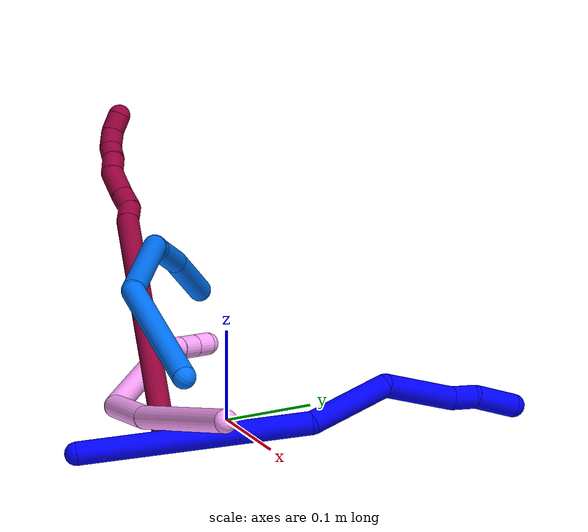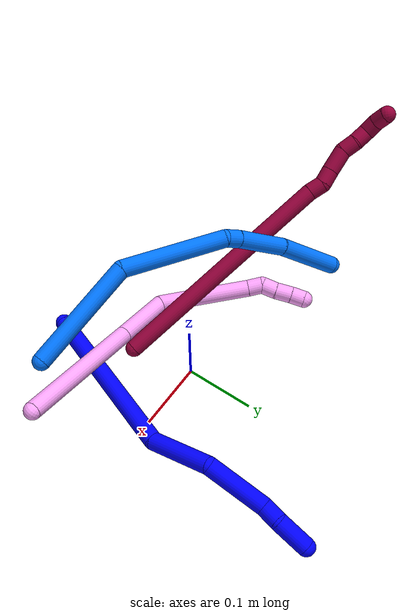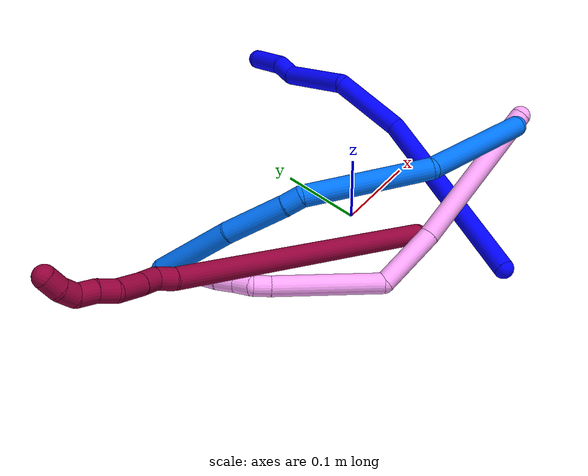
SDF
<sdf version="1.7">
 <world name="default">
  <model name="1">
   <static>0</static>
   <link name="1">
    <collision name="collision-cylinder-e_1_1_4">
     <pose>0.021854 0.020669 0.119803 -0.170846 0.177858 -0.01527</pose>
     <geometry><cylinder><radius>0.0125</radius><length>0.247042</length></cylinder></geometry>
     <surface>
      <friction><ode><mu>1.16</mu><mu2>1.16</mu2><slip1>0</slip1><slip2>0</slip2></ode></friction>
      <contact><ode><kp>1e+06</kp><kd>1</kd><max_vel>0</max_vel><min_depth>0.001</min_depth></ode></contact>
     </surface>
    </collision>
    <visual name="visual-cylinder-e_1_1_4">
     <pose>0.021854 0.020669 0.119803 -0.170846 0.177858 -0.01527</pose>
     <geometry><cylinder><radius>0.0125</radius><length>0.247042</length></cylinder></geometry>
     <material><ambient>0 0 1 1</ambient></material>
    </visual>
    <collision name="collision-cylinder-e_2_4_5">
     <pose>0.032069 0.047514 0.283124 -0.140966 -0.258835 0.018376</pose>
     <geometry><cylinder><radius>0.0125</radius><length>0.09094</length></cylinder></geometry>
     <surface>
      <friction><ode><mu>1.16</mu><mu2>1.16</mu2><slip1>0</slip1><slip2>0</slip2></ode></friction>
      <contact><ode><kp>1e+06</kp><kd>1</kd><max_vel>0</max_vel><min_depth>0.001</min_depth></ode></contact>
     </surface>
    </collision>
    <visual name="visual-cylinder-e_2_4_5">
     <pose>0.032069 0.047514 0.283124 -0.140966 -0.258835 0.018376</pose>
     <geometry><cylinder><radius>0.0125</radius><length>0.09094</length></cylinder></geometry>
     <material><ambient>0 0 1 1</ambient></material>
    </visual>
    <collision name="collision-cylinder-e_3_5_6">
     <pose>0.018864 0.083456 0.359042 -0.743075 -0.035604 0.013874</pose>
     <geometry><cylinder><radius>0.0125</radius><length>0.088049</length></cylinder></geometry>
     <surface>
      <friction><ode><mu>1.16</mu><mu2>1.16</mu2><slip1>0</slip1><slip2>0</slip2></ode></friction>
      <contact><ode><kp>1e+06</kp><kd>1</kd><max_vel>0</max_vel><min_depth>0.001</min_depth></ode></contact>
     </surface>
    </collision>
    <visual name="visual-cylinder-e_3_5_6">
     <pose>0.018864 0.083456 0.359042 -0.743075 -0.035604 0.013874</pose>
     <geometry><cylinder><radius>0.0125</radius><length>0.088049</length></cylinder></geometry>
     <material><ambient>0 0 1 1</ambient></material>
    </visual>
    <collision name="collision-cylinder-e_4_6_7">
     <pose>0.018651 0.117496 0.403866 -0.331293 0.102739 -0.01719</pose>
     <geometry><cylinder><radius>0.0125</radius><length>0.026418</length></cylinder></geometry>
     <surface>
      <friction><ode><mu>1.16</mu><mu2>1.16</mu2><slip1>0</slip1><slip2>0</slip2></ode></friction>
      <contact><ode><kp>1e+06</kp><kd>1</kd><max_vel>0</max_vel><min_depth>0.001</min_depth></ode></contact>
     </surface>
    </collision>
    <visual name="visual-cylinder-e_4_6_7">
     <pose>0.018651 0.117496 0.403866 -0.331293 0.102739 -0.01719</pose>
     <geometry><cylinder><radius>0.0125</radius><length>0.026418</length></cylinder></geometry>
     <material><ambient>0 0 1 1</ambient></material>
    </visual>
    <collision name="collision-cylinder-e_5_7_2">
     <pose>0.021661 0.137225 0.434282 -0.709722 0.069668 -0.025824</pose>
     <geometry><cylinder><radius>0.0125</radius><length>0.047552</length></cylinder></geometry>
     <surface>
      <friction><ode><mu>1.16</mu><mu2>1.16</mu2><slip1>0</slip1><slip2>0</slip2></ode></friction>
      <contact><ode><kp>1e+06</kp><kd>1</kd><max_vel>0</max_vel><min_depth>0.001</min_depth></ode></contact>
     </surface>
    </collision>
    <visual name="visual-cylinder-e_5_7_2">
     <pose>0.021661 0.137225 0.434282 -0.709722 0.069668 -0.025824</pose>
     <geometry><cylinder><radius>0.0125</radius><length>0.047552</length></cylinder></geometry>
     <material><ambient>0 0 1 1</ambient></material>
    </visual>
    <collision name="collision-sphere-2">
     <pose>0.023316 0.15268 0.452273 0 -0 0</pose>
     <geometry><sphere><radius>0.0125</radius></sphere></geometry>
     <surface>
      <friction><ode><mu>1.16</mu><mu2>1.16</mu2><slip1>0</slip1><slip2>0</slip2></ode></friction>
      <contact><ode><kp>1e+06</kp><kd>1</kd><max_vel>0</max_vel><min_depth>0.001</min_depth></ode></contact>
     </surface>
    </collision>
    <visual name="visual-sphere-2">
     <pose>0.023316 0.15268 0.452273 0 -0 0</pose>
     <geometry><sphere><radius>0.0125</radius></sphere></geometry>
     <material><ambient>0 0 1 1</ambient></material>
    </visual>
    <collision name="collision-sphere-7">
     <pose>0.020006 0.12177 0.41629 0 -0 0</pose>
     <geometry><sphere><radius>0.0125</radius></sphere></geometry>
     <surface>
      <friction><ode><mu>1.16</mu><mu2>1.16</mu2><slip1>0</slip1><slip2>0</slip2></ode></friction>
      <contact><ode><kp>1e+06</kp><kd>1</kd><max_vel>0</max_vel><min_depth>0.001</min_depth></ode></contact>
     </surface>
    </collision>
    <visual name="visual-sphere-7">
     <pose>0.020006 0.12177 0.41629 0 -0 0</pose>
     <geometry><sphere><radius>0.0125</radius></sphere></geometry>
     <material><ambient>0 0 1 1</ambient></material>
    </visual>
    <collision name="collision-sphere-6">
     <pose>0.017296 0.113222 0.391441 0 -0 0</pose>
     <geometry><sphere><radius>0.0125</radius></sphere></geometry>
     <surface>
      <friction><ode><mu>1.16</mu><mu2>1.16</mu2><slip1>0</slip1><slip2>0</slip2></ode></friction>
      <contact><ode><kp>1e+06</kp><kd>1</kd><max_vel>0</max_vel><min_depth>0.001</min_depth></ode></contact>
     </surface>
    </collision>
    <visual name="visual-sphere-6">
     <pose>0.017296 0.113222 0.391441 0 -0 0</pose>
     <geometry><sphere><radius>0.0125</radius></sphere></geometry>
     <material><ambient>0 0 1 1</ambient></material>
    </visual>
    <collision name="collision-sphere-5">
     <pose>0.020431 0.05369 0.326644 0 -0 0</pose>
     <geometry><sphere><radius>0.0125</radius></sphere></geometry>
     <surface>
      <friction><ode><mu>1.16</mu><mu2>1.16</mu2><slip1>0</slip1><slip2>0</slip2></ode></friction>
      <contact><ode><kp>1e+06</kp><kd>1</kd><max_vel>0</max_vel><min_depth>0.001</min_depth></ode></contact>
     </surface>
    </collision>
    <visual name="visual-sphere-5">
     <pose>0.020431 0.05369 0.326644 0 -0 0</pose>
     <geometry><sphere><radius>0.0125</radius></sphere></geometry>
     <material><ambient>0 0 1 1</ambient></material>
    </visual>
    <collision name="collision-sphere-1">
     <geometry><sphere><radius>0.0125</radius></sphere></geometry>
     <surface>
      <friction><ode><mu>1.16</mu><mu2>1.16</mu2><slip1>0</slip1><slip2>0</slip2></ode></friction>
      <contact><ode><kp>1e+06</kp><kd>1</kd><max_vel>0</max_vel><min_depth>0.001</min_depth></ode></contact>
     </surface>
    </collision>
    <visual name="visual-sphere-1">
     <geometry><sphere><radius>0.0125</radius></sphere></geometry>
     <material><ambient>0 0 1 1</ambient></material>
    </visual>
    <collision name="collision-sphere-4">
     <pose>0.043707 0.041339 0.239605 0 -0 0</pose>
     <geometry><sphere><radius>0.0125</radius></sphere></geometry>
     <surface>
      <friction><ode><mu>1.16</mu><mu2>1.16</mu2><slip1>0</slip1><slip2>0</slip2></ode></friction>
      <contact><ode><kp>1e+06</kp><kd>1</kd><max_vel>0</max_vel><min_depth>0.001</min_depth></ode></contact>
     </surface>
    </collision>
    <visual name="visual-sphere-4">
     <pose>0.043707 0.041339 0.239605 0 -0 0</pose>
     <geometry><sphere><radius>0.0125</radius></sphere></geometry>
     <material><ambient>0 0 1 1</ambient></material>
    </visual>
    <inertial>
     <pose>0.022997 0.052809 0.236554 0 -0 0</pose>
     <mass>0.5</mass>
     <inertia>
      <ixx>0.001368</ixx>
      <ixy>0</ixy>
      <ixz>0</ixz>
      <iyy>0.001363</iyy>
      <iyz>0</iyz>
      <izz>-0.00044</izz>
     </inertia>
    </inertial>
   </link>
   <pose>0.04405 -0.19658 0.011487 -1.22072 0.386022 -0.131909</pose>
  </model>
  <model name="4">
   <static>0</static>
   <link name="4">
    <collision name="collision-cylinder-e_1_1_4">
     <pose>-0.082066 0.012032 0.05208 -0.227043 -0.993485 0.12345</pose>
     <geometry><cylinder><radius>0.0125</radius><length>0.195876</length></cylinder></geometry>
     <surface>
      <friction><ode><mu>1.16</mu><mu2>1.16</mu2><slip1>0</slip1><slip2>0</slip2></ode></friction>
      <contact><ode><kp>1e+06</kp><kd>1</kd><max_vel>0</max_vel><min_depth>0.001</min_depth></ode></contact>
     </surface>
    </collision>
    <visual name="visual-cylinder-e_1_1_4">
     <pose>-0.082066 0.012032 0.05208 -0.227043 -0.993485 0.12345</pose>
     <geometry><cylinder><radius>0.0125</radius><length>0.195876</length></cylinder></geometry>
     <material><ambient>1 0.65098 0.996078 1</ambient></material>
    </visual>
    <collision name="collision-cylinder-e_2_4_5">
     <pose>-0.195514 0.029361 0.130594 -0.197766 -0.861075 0.091063</pose>
     <geometry><cylinder><radius>0.0125</radius><length>0.082746</length></cylinder></geometry>
     <surface>
      <friction><ode><mu>1.16</mu><mu2>1.16</mu2><slip1>0</slip1><slip2>0</slip2></ode></friction>
      <contact><ode><kp>1e+06</kp><kd>1</kd><max_vel>0</max_vel><min_depth>0.001</min_depth></ode></contact>
     </surface>
    </collision>
    <visual name="visual-cylinder-e_2_4_5">
     <pose>-0.195514 0.029361 0.130594 -0.197766 -0.861075 0.091063</pose>
     <geometry><cylinder><radius>0.0125</radius><length>0.082746</length></cylinder></geometry>
     <material><ambient>1 0.65098 0.996078 1</ambient></material>
    </visual>
    <collision name="collision-cylinder-e_3_5_6">
     <pose>-0.239703 0.075842 0.207891 -0.680639 -0.193223 0.068606</pose>
     <geometry><cylinder><radius>0.0125</radius><length>0.133374</length></cylinder></geometry>
     <surface>
      <friction><ode><mu>1.16</mu><mu2>1.16</mu2><slip1>0</slip1><slip2>0</slip2></ode></friction>
      <contact><ode><kp>1e+06</kp><kd>1</kd><max_vel>0</max_vel><min_depth>0.001</min_depth></ode></contact>
     </surface>
    </collision>
    <visual name="visual-cylinder-e_3_5_6">
     <pose>-0.239703 0.075842 0.207891 -0.680639 -0.193223 0.068606</pose>
     <geometry><cylinder><radius>0.0125</radius><length>0.133374</length></cylinder></geometry>
     <material><ambient>1 0.65098 0.996078 1</ambient></material>
    </visual>
    <collision name="collision-cylinder-e_4_6_7">
     <pose>-0.253895 0.123168 0.267488 -0.612816 -0.129166 0.040916</pose>
     <geometry><cylinder><radius>0.0125</radius><length>0.021534</length></cylinder></geometry>
     <surface>
      <friction><ode><mu>1.16</mu><mu2>1.16</mu2><slip1>0</slip1><slip2>0</slip2></ode></friction>
      <contact><ode><kp>1e+06</kp><kd>1</kd><max_vel>0</max_vel><min_depth>0.001</min_depth></ode></contact>
     </surface>
    </collision>
    <visual name="visual-cylinder-e_4_6_7">
     <pose>-0.253895 0.123168 0.267488 -0.612816 -0.129166 0.040916</pose>
     <geometry><cylinder><radius>0.0125</radius><length>0.021534</length></cylinder></geometry>
     <material><ambient>1 0.65098 0.996078 1</ambient></material>
    </visual>
    <collision name="collision-cylinder-e_5_7_8">
     <pose>-0.255597 0.139582 0.279854 -1.23103 -0.028908 0.020443</pose>
     <geometry><cylinder><radius>0.0125</radius><length>0.0218</length></cylinder></geometry>
     <surface>
      <friction><ode><mu>1.16</mu><mu2>1.16</mu2><slip1>0</slip1><slip2>0</slip2></ode></friction>
      <contact><ode><kp>1e+06</kp><kd>1</kd><max_vel>0</max_vel><min_depth>0.001</min_depth></ode></contact>
     </surface>
    </collision>
    <visual name="visual-cylinder-e_5_7_8">
     <pose>-0.255597 0.139582 0.279854 -1.23103 -0.028908 0.020443</pose>
     <geometry><cylinder><radius>0.0125</radius><length>0.0218</length></cylinder></geometry>
     <material><ambient>1 0.65098 0.996078 1</ambient></material>
    </visual>
    <collision name="collision-cylinder-e_6_8_9">
     <pose>-0.256745 0.160665 0.28885 -1.11014 -0.068894 0.042732</pose>
     <geometry><cylinder><radius>0.0125</radius><length>0.024193</length></cylinder></geometry>
     <surface>
      <friction><ode><mu>1.16</mu><mu2>1.16</mu2><slip1>0</slip1><slip2>0</slip2></ode></friction>
      <contact><ode><kp>1e+06</kp><kd>1</kd><max_vel>0</max_vel><min_depth>0.001</min_depth></ode></contact>
     </surface>
    </collision>
    <visual name="visual-cylinder-e_6_8_9">
     <pose>-0.256745 0.160665 0.28885 -1.11014 -0.068894 0.042732</pose>
     <geometry><cylinder><radius>0.0125</radius><length>0.024193</length></cylinder></geometry>
     <material><ambient>1 0.65098 0.996078 1</ambient></material>
    </visual>
    <collision name="collision-cylinder-e_7_9_2">
     <pose>-0.257201 0.180816 0.298389 -1.15054 0.036776 -0.023848</pose>
     <geometry><cylinder><radius>0.0125</radius><length>0.020477</length></cylinder></geometry>
     <surface>
      <friction><ode><mu>1.16</mu><mu2>1.16</mu2><slip1>0</slip1><slip2>0</slip2></ode></friction>
      <contact><ode><kp>1e+06</kp><kd>1</kd><max_vel>0</max_vel><min_depth>0.001</min_depth></ode></contact>
     </surface>
    </collision>
    <visual name="visual-cylinder-e_7_9_2">
     <pose>-0.257201 0.180816 0.298389 -1.15054 0.036776 -0.023848</pose>
     <geometry><cylinder><radius>0.0125</radius><length>0.020477</length></cylinder></geometry>
     <material><ambient>1 0.65098 0.996078 1</ambient></material>
    </visual>
    <collision name="collision-sphere-2">
     <pose>-0.256825 0.190157 0.302563 0 -0 0</pose>
     <geometry><sphere><radius>0.0125</radius></sphere></geometry>
     <surface>
      <friction><ode><mu>1.16</mu><mu2>1.16</mu2><slip1>0</slip1><slip2>0</slip2></ode></friction>
      <contact><ode><kp>1e+06</kp><kd>1</kd><max_vel>0</max_vel><min_depth>0.001</min_depth></ode></contact>
     </surface>
    </collision>
    <visual name="visual-sphere-2">
     <pose>-0.256825 0.190157 0.302563 0 -0 0</pose>
     <geometry><sphere><radius>0.0125</radius></sphere></geometry>
     <material><ambient>1 0.65098 0.996078 1</ambient></material>
    </visual>
    <collision name="collision-sphere-9">
     <pose>-0.257578 0.171474 0.294214 0 -0 0</pose>
     <geometry><sphere><radius>0.0125</radius></sphere></geometry>
     <surface>
      <friction><ode><mu>1.16</mu><mu2>1.16</mu2><slip1>0</slip1><slip2>0</slip2></ode></friction>
      <contact><ode><kp>1e+06</kp><kd>1</kd><max_vel>0</max_vel><min_depth>0.001</min_depth></ode></contact>
     </surface>
    </collision>
    <visual name="visual-sphere-9">
     <pose>-0.257578 0.171474 0.294214 0 -0 0</pose>
     <geometry><sphere><radius>0.0125</radius></sphere></geometry>
     <material><ambient>1 0.65098 0.996078 1</ambient></material>
    </visual>
    <collision name="collision-sphere-4">
     <pose>-0.164131 0.024064 0.10416 0 -0 0</pose>
     <geometry><sphere><radius>0.0125</radius></sphere></geometry>
     <surface>
      <friction><ode><mu>1.16</mu><mu2>1.16</mu2><slip1>0</slip1><slip2>0</slip2></ode></friction>
      <contact><ode><kp>1e+06</kp><kd>1</kd><max_vel>0</max_vel><min_depth>0.001</min_depth></ode></contact>
     </surface>
    </collision>
    <visual name="visual-sphere-4">
     <pose>-0.164131 0.024064 0.10416 0 -0 0</pose>
     <geometry><sphere><radius>0.0125</radius></sphere></geometry>
     <material><ambient>1 0.65098 0.996078 1</ambient></material>
    </visual>
    <collision name="collision-sphere-1">
     <geometry><sphere><radius>0.0125</radius></sphere></geometry>
     <surface>
      <friction><ode><mu>1.16</mu><mu2>1.16</mu2><slip1>0</slip1><slip2>0</slip2></ode></friction>
      <contact><ode><kp>1e+06</kp><kd>1</kd><max_vel>0</max_vel><min_depth>0.001</min_depth></ode></contact>
     </surface>
    </collision>
    <visual name="visual-sphere-1">
     <geometry><sphere><radius>0.0125</radius></sphere></geometry>
     <material><ambient>1 0.65098 0.996078 1</ambient></material>
    </visual>
    <collision name="collision-sphere-8">
     <pose>-0.255912 0.149855 0.283485 0 -0 0</pose>
     <geometry><sphere><radius>0.0125</radius></sphere></geometry>
     <surface>
      <friction><ode><mu>1.16</mu><mu2>1.16</mu2><slip1>0</slip1><slip2>0</slip2></ode></friction>
      <contact><ode><kp>1e+06</kp><kd>1</kd><max_vel>0</max_vel><min_depth>0.001</min_depth></ode></contact>
     </surface>
    </collision>
    <visual name="visual-sphere-8">
     <pose>-0.255912 0.149855 0.283485 0 -0 0</pose>
     <geometry><sphere><radius>0.0125</radius></sphere></geometry>
     <material><ambient>1 0.65098 0.996078 1</ambient></material>
    </visual>
    <collision name="collision-sphere-5">
     <pose>-0.226897 0.034658 0.157028 0 -0 0</pose>
     <geometry><sphere><radius>0.0125</radius></sphere></geometry>
     <surface>
      <friction><ode><mu>1.16</mu><mu2>1.16</mu2><slip1>0</slip1><slip2>0</slip2></ode></friction>
      <contact><ode><kp>1e+06</kp><kd>1</kd><max_vel>0</max_vel><min_depth>0.001</min_depth></ode></contact>
     </surface>
    </collision>
    <visual name="visual-sphere-5">
     <pose>-0.226897 0.034658 0.157028 0 -0 0</pose>
     <geometry><sphere><radius>0.0125</radius></sphere></geometry>
     <material><ambient>1 0.65098 0.996078 1</ambient></material>
    </visual>
    <collision name="collision-sphere-6">
     <pose>-0.252508 0.117027 0.258754 0 -0 0</pose>
     <geometry><sphere><radius>0.0125</radius></sphere></geometry>
     <surface>
      <friction><ode><mu>1.16</mu><mu2>1.16</mu2><slip1>0</slip1><slip2>0</slip2></ode></friction>
      <contact><ode><kp>1e+06</kp><kd>1</kd><max_vel>0</max_vel><min_depth>0.001</min_depth></ode></contact>
     </surface>
    </collision>
    <visual name="visual-sphere-6">
     <pose>-0.252508 0.117027 0.258754 0 -0 0</pose>
     <geometry><sphere><radius>0.0125</radius></sphere></geometry>
     <material><ambient>1 0.65098 0.996078 1</ambient></material>
    </visual>
    <collision name="collision-sphere-7">
     <pose>-0.255282 0.12931 0.276223 0 -0 0</pose>
     <geometry><sphere><radius>0.0125</radius></sphere></geometry>
     <surface>
      <friction><ode><mu>1.16</mu><mu2>1.16</mu2><slip1>0</slip1><slip2>0</slip2></ode></friction>
      <contact><ode><kp>1e+06</kp><kd>1</kd><max_vel>0</max_vel><min_depth>0.001</min_depth></ode></contact>
     </surface>
    </collision>
    <visual name="visual-sphere-7">
     <pose>-0.255282 0.12931 0.276223 0 -0 0</pose>
     <geometry><sphere><radius>0.0125</radius></sphere></geometry>
     <material><ambient>1 0.65098 0.996078 1</ambient></material>
    </visual>
    <inertial>
     <pose>-0.173481 0.056373 0.147388 0 -0 0</pose>
     <mass>0.5</mass>
     <inertia>
      <ixx>0.000621</ixx>
      <ixy>0</ixy>
      <ixz>0</ixz>
      <iyy>0.000914</iyy>
      <iyz>0</iyz>
      <izz>0.000417</izz>
     </inertia>
    </inertial>
   </link>
   <pose>0.204132 -0.104262 0.085343 -0.617272 -0.742484 0.446393</pose>
  </model>
  <model name="8">
   <static>0</static>
   <link name="8">
    <collision name="collision-cylinder-e_1_1_4">
     <pose>-0.106634 0.028953 0.128877 -0.220989 -0.67917 0.078348</pose>
     <geometry><cylinder><radius>0.0125</radius><length>0.339519</length></cylinder></geometry>
     <surface>
      <friction><ode><mu>1.16</mu><mu2>1.16</mu2><slip1>0</slip1><slip2>0</slip2></ode></friction>
      <contact><ode><kp>1e+06</kp><kd>1</kd><max_vel>0</max_vel><min_depth>0.001</min_depth></ode></contact>
     </surface>
    </collision>
    <visual name="visual-cylinder-e_1_1_4">
     <pose>-0.106634 0.028953 0.128877 -0.220989 -0.67917 0.078348</pose>
     <geometry><cylinder><radius>0.0125</radius><length>0.339519</length></cylinder></geometry>
     <material><ambient>0.584314 0 0.227451 1</ambient></material>
    </visual>
    <collision name="collision-cylinder-e_2_4_5">
     <pose>-0.218265 0.059041 0.267231 -0.119152 -0.482225 0.029332</pose>
     <geometry><cylinder><radius>0.0125</radius><length>0.021548</length></cylinder></geometry>
     <surface>
      <friction><ode><mu>1.16</mu><mu2>1.16</mu2><slip1>0</slip1><slip2>0</slip2></ode></friction>
      <contact><ode><kp>1e+06</kp><kd>1</kd><max_vel>0</max_vel><min_depth>0.001</min_depth></ode></contact>
     </surface>
    </collision>
    <visual name="visual-cylinder-e_2_4_5">
     <pose>-0.218265 0.059041 0.267231 -0.119152 -0.482225 0.029332</pose>
     <geometry><cylinder><radius>0.0125</radius><length>0.021548</length></cylinder></geometry>
     <material><ambient>0.584314 0 0.227451 1</ambient></material>
    </visual>
    <collision name="collision-cylinder-e_3_5_6">
     <pose>-0.232366 0.060983 0.282547 -0.137375 -0.99633 0.074804</pose>
     <geometry><cylinder><radius>0.0125</radius><length>0.021692</length></cylinder></geometry>
     <surface>
      <friction><ode><mu>1.16</mu><mu2>1.16</mu2><slip1>0</slip1><slip2>0</slip2></ode></friction>
      <contact><ode><kp>1e+06</kp><kd>1</kd><max_vel>0</max_vel><min_depth>0.001</min_depth></ode></contact>
     </surface>
    </collision>
    <visual name="visual-cylinder-e_3_5_6">
     <pose>-0.232366 0.060983 0.282547 -0.137375 -0.99633 0.074804</pose>
     <geometry><cylinder><radius>0.0125</radius><length>0.021692</length></cylinder></geometry>
     <material><ambient>0.584314 0 0.227451 1</ambient></material>
    </visual>
    <collision name="collision-cylinder-e_4_6_7">
     <pose>-0.25511 0.062396 0.298285 -0.06111 -0.94203 0.031127</pose>
     <geometry><cylinder><radius>0.0125</radius><length>0.033729</length></cylinder></geometry>
     <surface>
      <friction><ode><mu>1.16</mu><mu2>1.16</mu2><slip1>0</slip1><slip2>0</slip2></ode></friction>
      <contact><ode><kp>1e+06</kp><kd>1</kd><max_vel>0</max_vel><min_depth>0.001</min_depth></ode></contact>
     </surface>
    </collision>
    <visual name="visual-cylinder-e_4_6_7">
     <pose>-0.25511 0.062396 0.298285 -0.06111 -0.94203 0.031127</pose>
     <geometry><cylinder><radius>0.0125</radius><length>0.033729</length></cylinder></geometry>
     <material><ambient>0.584314 0 0.227451 1</ambient></material>
    </visual>
    <collision name="collision-cylinder-e_5_7_8">
     <pose>-0.274276 0.063727 0.317494 -0.077765 -0.534417 0.021298</pose>
     <geometry><cylinder><radius>0.0125</radius><length>0.021699</length></cylinder></geometry>
     <surface>
      <friction><ode><mu>1.16</mu><mu2>1.16</mu2><slip1>0</slip1><slip2>0</slip2></ode></friction>
      <contact><ode><kp>1e+06</kp><kd>1</kd><max_vel>0</max_vel><min_depth>0.001</min_depth></ode></contact>
     </surface>
    </collision>
    <visual name="visual-cylinder-e_5_7_8">
     <pose>-0.274276 0.063727 0.317494 -0.077765 -0.534417 0.021298</pose>
     <geometry><cylinder><radius>0.0125</radius><length>0.021699</length></cylinder></geometry>
     <material><ambient>0.584314 0 0.227451 1</ambient></material>
    </visual>
    <collision name="collision-cylinder-e_6_8_9">
     <pose>-0.286789 0.06678 0.334754 -0.284844 -0.700591 0.104685</pose>
     <geometry><cylinder><radius>0.0125</radius><length>0.021677</length></cylinder></geometry>
     <surface>
      <friction><ode><mu>1.16</mu><mu2>1.16</mu2><slip1>0</slip1><slip2>0</slip2></ode></friction>
      <contact><ode><kp>1e+06</kp><kd>1</kd><max_vel>0</max_vel><min_depth>0.001</min_depth></ode></contact>
     </surface>
    </collision>
    <visual name="visual-cylinder-e_6_8_9">
     <pose>-0.286789 0.06678 0.334754 -0.284844 -0.700591 0.104685</pose>
     <geometry><cylinder><radius>0.0125</radius><length>0.021677</length></cylinder></geometry>
     <material><ambient>0.584314 0 0.227451 1</ambient></material>
    </visual>
    <collision name="collision-cylinder-e_7_9_10">
     <pose>-0.298671 0.065769 0.350766 0.392801 -0.511291 -0.103911</pose>
     <geometry><cylinder><radius>0.0125</radius><length>0.02001</length></cylinder></geometry>
     <surface>
      <friction><ode><mu>1.16</mu><mu2>1.16</mu2><slip1>0</slip1><slip2>0</slip2></ode></friction>
      <contact><ode><kp>1e+06</kp><kd>1</kd><max_vel>0</max_vel><min_depth>0.001</min_depth></ode></contact>
     </surface>
    </collision>
    <visual name="visual-cylinder-e_7_9_10">
     <pose>-0.298671 0.065769 0.350766 0.392801 -0.511291 -0.103911</pose>
     <geometry><cylinder><radius>0.0125</radius><length>0.02001</length></cylinder></geometry>
     <material><ambient>0.584314 0 0.227451 1</ambient></material>
    </visual>
    <collision name="collision-cylinder-e_8_10_2">
     <pose>-0.305868 0.057538 0.367316 0.522726 -0.230702 -0.061964</pose>
     <geometry><cylinder><radius>0.0125</radius><length>0.020127</length></cylinder></geometry>
     <surface>
      <friction><ode><mu>1.16</mu><mu2>1.16</mu2><slip1>0</slip1><slip2>0</slip2></ode></friction>
      <contact><ode><kp>1e+06</kp><kd>1</kd><max_vel>0</max_vel><min_depth>0.001</min_depth></ode></contact>
     </surface>
    </collision>
    <visual name="visual-cylinder-e_8_10_2">
     <pose>-0.305868 0.057538 0.367316 0.522726 -0.230702 -0.061964</pose>
     <geometry><cylinder><radius>0.0125</radius><length>0.020127</length></cylinder></geometry>
     <material><ambient>0.584314 0 0.227451 1</ambient></material>
    </visual>
    <collision name="collision-sphere-2">
     <pose>-0.308169 0.052647 0.375804 0 -0 0</pose>
     <geometry><sphere><radius>0.0125</radius></sphere></geometry>
     <surface>
      <friction><ode><mu>1.16</mu><mu2>1.16</mu2><slip1>0</slip1><slip2>0</slip2></ode></friction>
      <contact><ode><kp>1e+06</kp><kd>1</kd><max_vel>0</max_vel><min_depth>0.001</min_depth></ode></contact>
     </surface>
    </collision>
    <visual name="visual-sphere-2">
     <pose>-0.308169 0.052647 0.375804 0 -0 0</pose>
     <geometry><sphere><radius>0.0125</radius></sphere></geometry>
     <material><ambient>0.584314 0 0.227451 1</ambient></material>
    </visual>
    <collision name="collision-sphere-10">
     <pose>-0.303567 0.062429 0.358827 0 -0 0</pose>
     <geometry><sphere><radius>0.0125</radius></sphere></geometry>
     <surface>
      <friction><ode><mu>1.16</mu><mu2>1.16</mu2><slip1>0</slip1><slip2>0</slip2></ode></friction>
      <contact><ode><kp>1e+06</kp><kd>1</kd><max_vel>0</max_vel><min_depth>0.001</min_depth></ode></contact>
     </surface>
    </collision>
    <visual name="visual-sphere-10">
     <pose>-0.303567 0.062429 0.358827 0 -0 0</pose>
     <geometry><sphere><radius>0.0125</radius></sphere></geometry>
     <material><ambient>0.584314 0 0.227451 1</ambient></material>
    </visual>
    <collision name="collision-sphere-9">
     <pose>-0.293776 0.069109 0.342705 0 -0 0</pose>
     <geometry><sphere><radius>0.0125</radius></sphere></geometry>
     <surface>
      <friction><ode><mu>1.16</mu><mu2>1.16</mu2><slip1>0</slip1><slip2>0</slip2></ode></friction>
      <contact><ode><kp>1e+06</kp><kd>1</kd><max_vel>0</max_vel><min_depth>0.001</min_depth></ode></contact>
     </surface>
    </collision>
    <visual name="visual-sphere-9">
     <pose>-0.293776 0.069109 0.342705 0 -0 0</pose>
     <geometry><sphere><radius>0.0125</radius></sphere></geometry>
     <material><ambient>0.584314 0 0.227451 1</ambient></material>
    </visual>
    <collision name="collision-sphere-4">
     <pose>-0.213268 0.057906 0.257753 0 -0 0</pose>
     <geometry><sphere><radius>0.0125</radius></sphere></geometry>
     <surface>
      <friction><ode><mu>1.16</mu><mu2>1.16</mu2><slip1>0</slip1><slip2>0</slip2></ode></friction>
      <contact><ode><kp>1e+06</kp><kd>1</kd><max_vel>0</max_vel><min_depth>0.001</min_depth></ode></contact>
     </surface>
    </collision>
    <visual name="visual-sphere-4">
     <pose>-0.213268 0.057906 0.257753 0 -0 0</pose>
     <geometry><sphere><radius>0.0125</radius></sphere></geometry>
     <material><ambient>0.584314 0 0.227451 1</ambient></material>
    </visual>
    <collision name="collision-sphere-1">
     <geometry><sphere><radius>0.0125</radius></sphere></geometry>
     <surface>
      <friction><ode><mu>1.16</mu><mu2>1.16</mu2><slip1>0</slip1><slip2>0</slip2></ode></friction>
      <contact><ode><kp>1e+06</kp><kd>1</kd><max_vel>0</max_vel><min_depth>0.001</min_depth></ode></contact>
     </surface>
    </collision>
    <visual name="visual-sphere-1">
     <geometry><sphere><radius>0.0125</radius></sphere></geometry>
     <material><ambient>0.584314 0 0.227451 1</ambient></material>
    </visual>
    <collision name="collision-sphere-8">
     <pose>-0.279802 0.064452 0.326802 0 -0 0</pose>
     <geometry><sphere><radius>0.0125</radius></sphere></geometry>
     <surface>
      <friction><ode><mu>1.16</mu><mu2>1.16</mu2><slip1>0</slip1><slip2>0</slip2></ode></friction>
      <contact><ode><kp>1e+06</kp><kd>1</kd><max_vel>0</max_vel><min_depth>0.001</min_depth></ode></contact>
     </surface>
    </collision>
    <visual name="visual-sphere-8">
     <pose>-0.279802 0.064452 0.326802 0 -0 0</pose>
     <geometry><sphere><radius>0.0125</radius></sphere></geometry>
     <material><ambient>0.584314 0 0.227451 1</ambient></material>
    </visual>
    <collision name="collision-sphere-5">
     <pose>-0.223261 0.060176 0.276709 0 -0 0</pose>
     <geometry><sphere><radius>0.0125</radius></sphere></geometry>
     <surface>
      <friction><ode><mu>1.16</mu><mu2>1.16</mu2><slip1>0</slip1><slip2>0</slip2></ode></friction>
      <contact><ode><kp>1e+06</kp><kd>1</kd><max_vel>0</max_vel><min_depth>0.001</min_depth></ode></contact>
     </surface>
    </collision>
    <visual name="visual-sphere-5">
     <pose>-0.223261 0.060176 0.276709 0 -0 0</pose>
     <geometry><sphere><radius>0.0125</radius></sphere></geometry>
     <material><ambient>0.584314 0 0.227451 1</ambient></material>
    </visual>
    <collision name="collision-sphere-6">
     <pose>-0.241471 0.06179 0.288385 0 -0 0</pose>
     <geometry><sphere><radius>0.0125</radius></sphere></geometry>
     <surface>
      <friction><ode><mu>1.16</mu><mu2>1.16</mu2><slip1>0</slip1><slip2>0</slip2></ode></friction>
      <contact><ode><kp>1e+06</kp><kd>1</kd><max_vel>0</max_vel><min_depth>0.001</min_depth></ode></contact>
     </surface>
    </collision>
    <visual name="visual-sphere-6">
     <pose>-0.241471 0.06179 0.288385 0 -0 0</pose>
     <geometry><sphere><radius>0.0125</radius></sphere></geometry>
     <material><ambient>0.584314 0 0.227451 1</ambient></material>
    </visual>
    <collision name="collision-sphere-7">
     <pose>-0.26875 0.063001 0.308185 0 -0 0</pose>
     <geometry><sphere><radius>0.0125</radius></sphere></geometry>
     <surface>
      <friction><ode><mu>1.16</mu><mu2>1.16</mu2><slip1>0</slip1><slip2>0</slip2></ode></friction>
      <contact><ode><kp>1e+06</kp><kd>1</kd><max_vel>0</max_vel><min_depth>0.001</min_depth></ode></contact>
     </surface>
    </collision>
    <visual name="visual-sphere-7">
     <pose>-0.26875 0.063001 0.308185 0 -0 0</pose>
     <geometry><sphere><radius>0.0125</radius></sphere></geometry>
     <material><ambient>0.584314 0 0.227451 1</ambient></material>
    </visual>
    <inertial>
     <pose>-0.157706 0.039668 0.188523 0 -0 0</pose>
     <mass>0.5</mass>
     <inertia>
      <ixx>0.002726</ixx>
      <ixy>0</ixy>
      <ixz>0</ixz>
      <iyy>0.003438</iyy>
      <iyz>0</iyz>
      <izz>0.001537</izz>
     </inertia>
    </inertial>
   </link>
   <pose>0.02048 -0.08544 0.0115 -1.19118 0.428377 0.644135</pose>
  </model>
  <model name="14">
   <static>0</static>
   <link name="14">
    <collision name="collision-cylinder-e_1_1_4">
     <pose>0.010753 0.078859 0.006873 -1.48386 0.135013 -0.123787</pose>
     <geometry><cylinder><radius>0.0125</radius><length>0.15977</length></cylinder></geometry>
     <surface>
      <friction><ode><mu>1.16</mu><mu2>1.16</mu2><slip1>0</slip1><slip2>0</slip2></ode></friction>
      <contact><ode><kp>1e+06</kp><kd>1</kd><max_vel>0</max_vel><min_depth>0.001</min_depth></ode></contact>
     </surface>
    </collision>
    <visual name="visual-cylinder-e_1_1_4">
     <pose>0.010753 0.078859 0.006873 -1.48386 0.135013 -0.123787</pose>
     <geometry><cylinder><radius>0.0125</radius><length>0.15977</length></cylinder></geometry>
     <material><ambient>0 0.462745 1 1</ambient></material>
    </visual>
    <collision name="collision-cylinder-e_2_4_5">
     <pose>-0.009159 0.224859 0.019899 -1.47942 -0.426848 0.390509</pose>
     <geometry><cylinder><radius>0.0125</radius><length>0.148136</length></cylinder></geometry>
     <surface>
      <friction><ode><mu>1.16</mu><mu2>1.16</mu2><slip1>0</slip1><slip2>0</slip2></ode></friction>
      <contact><ode><kp>1e+06</kp><kd>1</kd><max_vel>0</max_vel><min_depth>0.001</min_depth></ode></contact>
     </surface>
    </collision>
    <visual name="visual-cylinder-e_2_4_5">
     <pose>-0.009159 0.224859 0.019899 -1.47942 -0.426848 0.390509</pose>
     <geometry><cylinder><radius>0.0125</radius><length>0.148136</length></cylinder></geometry>
     <material><ambient>0 0.462745 1 1</ambient></material>
    </visual>
    <collision name="collision-cylinder-e_3_5_6">
     <pose>-0.046055 0.29933 0.030874 -0.988759 -0.61755 0.340545</pose>
     <geometry><cylinder><radius>0.0125</radius><length>0.021525</length></cylinder></geometry>
     <surface>
      <friction><ode><mu>1.16</mu><mu2>1.16</mu2><slip1>0</slip1><slip2>0</slip2></ode></friction>
      <contact><ode><kp>1e+06</kp><kd>1</kd><max_vel>0</max_vel><min_depth>0.001</min_depth></ode></contact>
     </surface>
    </collision>
    <visual name="visual-cylinder-e_3_5_6">
     <pose>-0.046055 0.29933 0.030874 -0.988759 -0.61755 0.340545</pose>
     <geometry><cylinder><radius>0.0125</radius><length>0.021525</length></cylinder></geometry>
     <material><ambient>0 0.462745 1 1</ambient></material>
    </visual>
    <collision name="collision-cylinder-e_4_6_7">
     <pose>-0.077012 0.32924 0.050821 -0.980662 -0.738191 0.407259</pose>
     <geometry><cylinder><radius>0.0125</radius><length>0.073483</length></cylinder></geometry>
     <surface>
      <friction><ode><mu>1.16</mu><mu2>1.16</mu2><slip1>0</slip1><slip2>0</slip2></ode></friction>
      <contact><ode><kp>1e+06</kp><kd>1</kd><max_vel>0</max_vel><min_depth>0.001</min_depth></ode></contact>
     </surface>
    </collision>
    <visual name="visual-cylinder-e_4_6_7">
     <pose>-0.077012 0.32924 0.050821 -0.980662 -0.738191 0.407259</pose>
     <geometry><cylinder><radius>0.0125</radius><length>0.073483</length></cylinder></geometry>
     <material><ambient>0 0.462745 1 1</ambient></material>
    </visual>
    <collision name="collision-cylinder-e_5_7_2">
     <pose>-0.13689 0.375549 0.08956 -0.787788 -0.809808 0.352555</pose>
     <geometry><cylinder><radius>0.0125</radius><length>0.097086</length></cylinder></geometry>
     <surface>
      <friction><ode><mu>1.16</mu><mu2>1.16</mu2><slip1>0</slip1><slip2>0</slip2></ode></friction>
      <contact><ode><kp>1e+06</kp><kd>1</kd><max_vel>0</max_vel><min_depth>0.001</min_depth></ode></contact>
     </surface>
    </collision>
    <visual name="visual-cylinder-e_5_7_2">
     <pose>-0.13689 0.375549 0.08956 -0.787788 -0.809808 0.352555</pose>
     <geometry><cylinder><radius>0.0125</radius><length>0.097086</length></cylinder></geometry>
     <material><ambient>0 0.462745 1 1</ambient></material>
    </visual>
    <collision name="collision-sphere-2">
     <pose>-0.172043 0.399278 0.113175 0 -0 0</pose>
     <geometry><sphere><radius>0.0125</radius></sphere></geometry>
     <surface>
      <friction><ode><mu>1.16</mu><mu2>1.16</mu2><slip1>0</slip1><slip2>0</slip2></ode></friction>
      <contact><ode><kp>1e+06</kp><kd>1</kd><max_vel>0</max_vel><min_depth>0.001</min_depth></ode></contact>
     </surface>
    </collision>
    <visual name="visual-sphere-2">
     <pose>-0.172043 0.399278 0.113175 0 -0 0</pose>
     <geometry><sphere><radius>0.0125</radius></sphere></geometry>
     <material><ambient>0 0.462745 1 1</ambient></material>
    </visual>
    <collision name="collision-sphere-7">
     <pose>-0.101738 0.351821 0.065945 0 -0 0</pose>
     <geometry><sphere><radius>0.0125</radius></sphere></geometry>
     <surface>
      <friction><ode><mu>1.16</mu><mu2>1.16</mu2><slip1>0</slip1><slip2>0</slip2></ode></friction>
      <contact><ode><kp>1e+06</kp><kd>1</kd><max_vel>0</max_vel><min_depth>0.001</min_depth></ode></contact>
     </surface>
    </collision>
    <visual name="visual-sphere-7">
     <pose>-0.101738 0.351821 0.065945 0 -0 0</pose>
     <geometry><sphere><radius>0.0125</radius></sphere></geometry>
     <material><ambient>0 0.462745 1 1</ambient></material>
    </visual>
    <collision name="collision-sphere-6">
     <pose>-0.052287 0.30666 0.035698 0 -0 0</pose>
     <geometry><sphere><radius>0.0125</radius></sphere></geometry>
     <surface>
      <friction><ode><mu>1.16</mu><mu2>1.16</mu2><slip1>0</slip1><slip2>0</slip2></ode></friction>
      <contact><ode><kp>1e+06</kp><kd>1</kd><max_vel>0</max_vel><min_depth>0.001</min_depth></ode></contact>
     </surface>
    </collision>
    <visual name="visual-sphere-6">
     <pose>-0.052287 0.30666 0.035698 0 -0 0</pose>
     <geometry><sphere><radius>0.0125</radius></sphere></geometry>
     <material><ambient>0 0.462745 1 1</ambient></material>
    </visual>
    <collision name="collision-sphere-5">
     <pose>-0.039823 0.292 0.026051 0 -0 0</pose>
     <geometry><sphere><radius>0.0125</radius></sphere></geometry>
     <surface>
      <friction><ode><mu>1.16</mu><mu2>1.16</mu2><slip1>0</slip1><slip2>0</slip2></ode></friction>
      <contact><ode><kp>1e+06</kp><kd>1</kd><max_vel>0</max_vel><min_depth>0.001</min_depth></ode></contact>
     </surface>
    </collision>
    <visual name="visual-sphere-5">
     <pose>-0.039823 0.292 0.026051 0 -0 0</pose>
     <geometry><sphere><radius>0.0125</radius></sphere></geometry>
     <material><ambient>0 0.462745 1 1</ambient></material>
    </visual>
    <collision name="collision-sphere-1">
     <geometry><sphere><radius>0.0125</radius></sphere></geometry>
     <surface>
      <friction><ode><mu>1.16</mu><mu2>1.16</mu2><slip1>0</slip1><slip2>0</slip2></ode></friction>
      <contact><ode><kp>1e+06</kp><kd>1</kd><max_vel>0</max_vel><min_depth>0.001</min_depth></ode></contact>
     </surface>
    </collision>
    <visual name="visual-sphere-1">
     <geometry><sphere><radius>0.0125</radius></sphere></geometry>
     <material><ambient>0 0.462745 1 1</ambient></material>
    </visual>
    <collision name="collision-sphere-4">
     <pose>0.021505 0.157718 0.013747 0 -0 0</pose>
     <geometry><sphere><radius>0.0125</radius></sphere></geometry>
     <surface>
      <friction><ode><mu>1.16</mu><mu2>1.16</mu2><slip1>0</slip1><slip2>0</slip2></ode></friction>
      <contact><ode><kp>1e+06</kp><kd>1</kd><max_vel>0</max_vel><min_depth>0.001</min_depth></ode></contact>
     </surface>
    </collision>
    <visual name="visual-sphere-4">
     <pose>0.021505 0.157718 0.013747 0 -0 0</pose>
     <geometry><sphere><radius>0.0125</radius></sphere></geometry>
     <material><ambient>0 0.462745 1 1</ambient></material>
    </visual>
    <inertial>
     <pose>-0.039159 0.226013 0.03428 0 -0 0</pose>
     <mass>0.5</mass>
     <inertia>
      <ixx>0.000721</ixx>
      <ixy>0</ixy>
      <ixz>0</ixz>
      <iyy>0.000312</iyy>
      <iyz>0</iyz>
      <izz>-0.000495</izz>
     </inertia>
    </inertial>
   </link>
   <pose>0.153658 -0.125526 0.119884 2.81997 -0.469929 -1.69313</pose>
  </model>
 </world>
</sdf>
